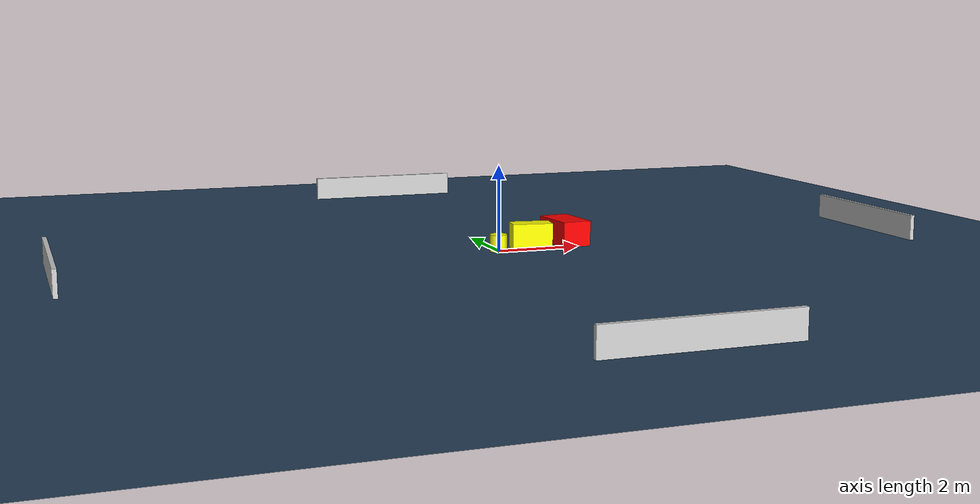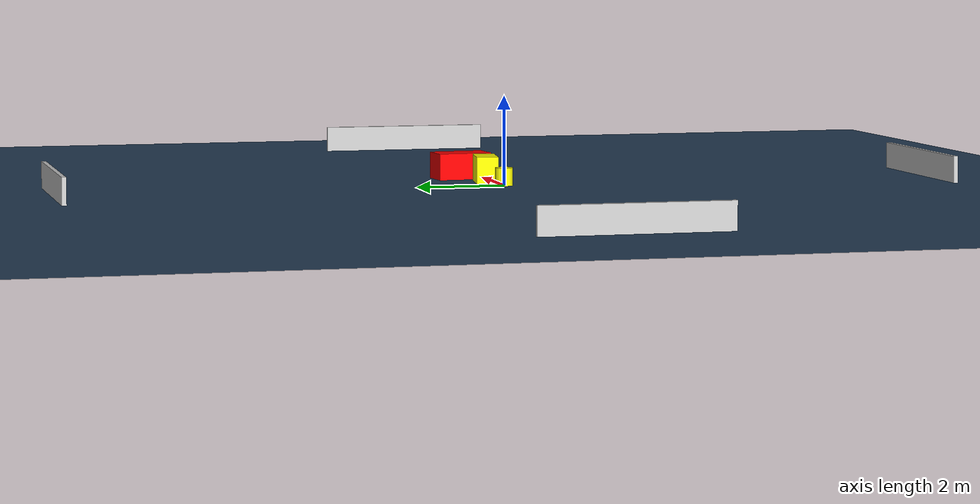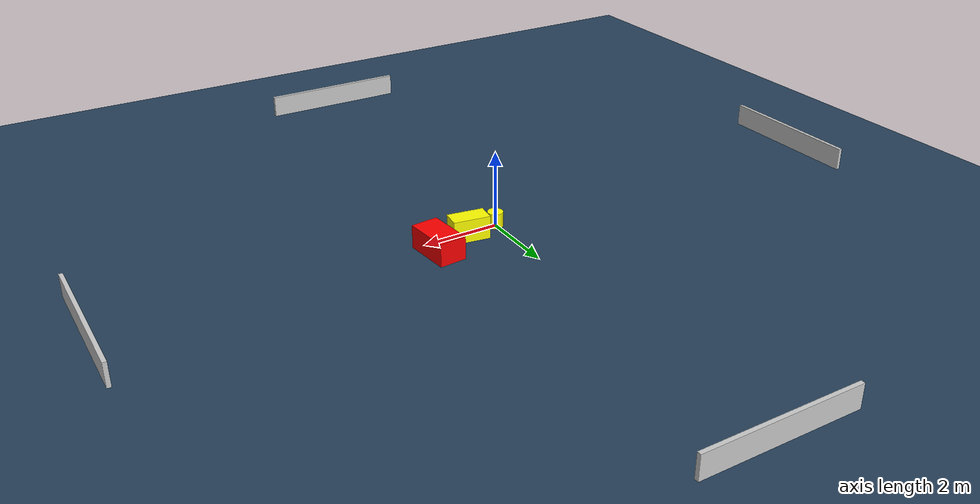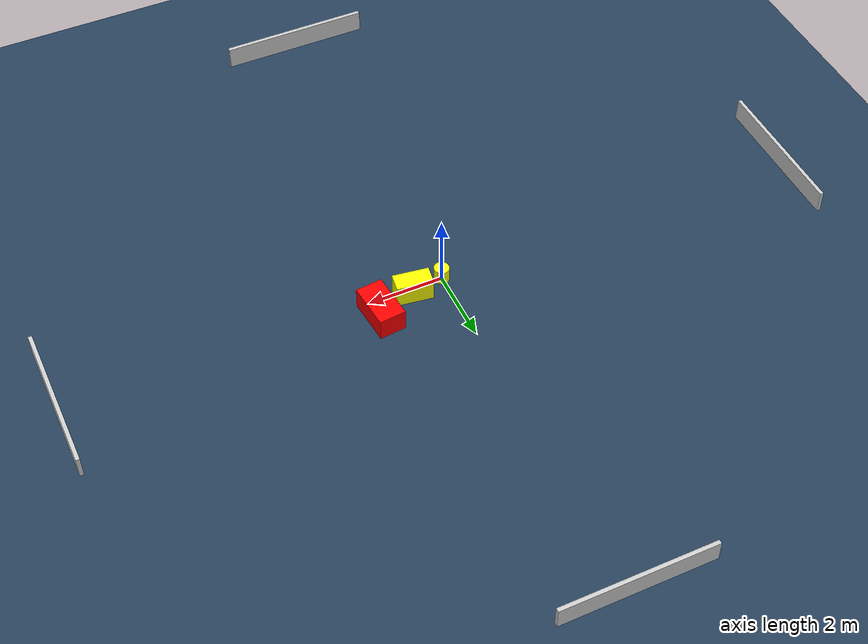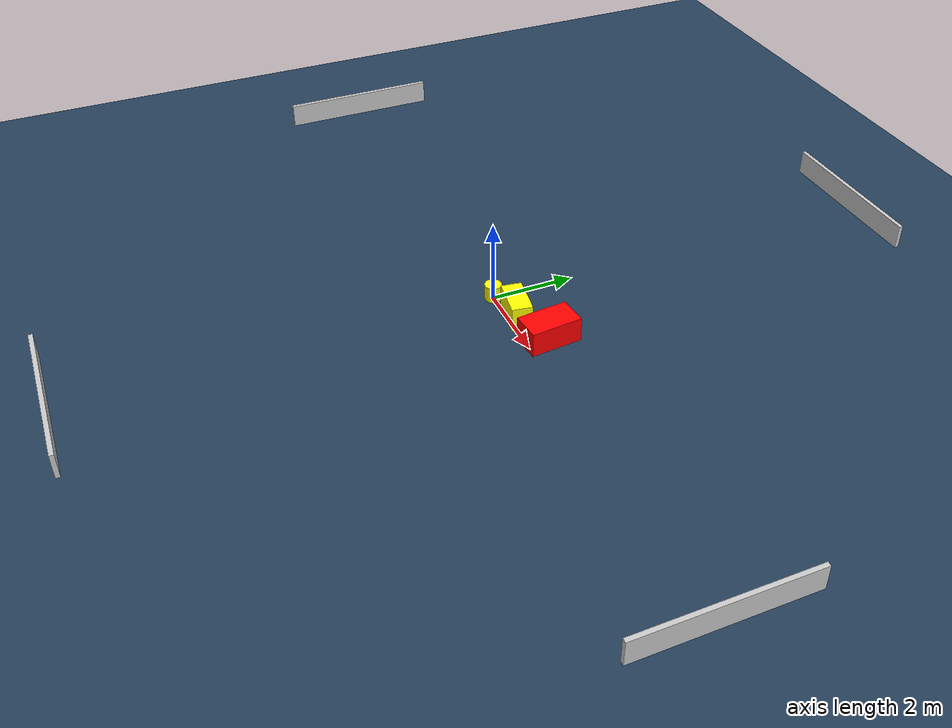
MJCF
<?xml version="1.0" ?>
<mujoco model="generated_environment">
  <option timestep="0.01" integrator="RK4" cone="elliptic"/>
  <default>
    <geom density="1"/>
  </default>
  <asset>
    <texture builtin="gradient" height="3072" name="skybox" rgb1="0.3 0.5 0.7" rgb2="0 0 0" type="skybox" width="512"/>
    <texture builtin="checker" height="300" name="groundplane" rgb1="0.2 0.3 0.4" rgb2="0.1 0.2 0.3" type="2d" width="300"/>
    <material name="groundplane" reflectance="0.2" texrepeat="5 5" texture="groundplane"/>
  </asset>
  <worldbody>
    <light dir="0 0 -1" directional="true" pos="0 0 1.5"/>
    <geom condim="3" friction="0.5 0.005 0.001" material="groundplane" name="floor" pos="0 0 0" size="0 0 0.05" type="plane"/>
    <body name="walls">
      <geom name="wall_1" condim="4" pos="-10.0 0.0 0.3" rgba="0.800000011920929 0.800000011920929 0.800000011920929 1.0" size="0.05 2.0 0.3" type="box"/>
      <geom name="wall_2" condim="4" pos="10.0 0.0 0.3" rgba="0.800000011920929 0.800000011920929 0.800000011920929 1.0" size="0.05 2.0 0.3" type="box"/>
      <geom name="wall_3" condim="4" pos="0.0 -10.0 0.3" rgba="0.800000011920929 0.800000011920929 0.800000011920929 1.0" size="2.0 0.05 0.3" type="box"/>
      <geom name="wall_4" condim="4" pos="0.0 10.0 0.3" rgba="0.800000011920929 0.800000011920929 0.800000011920929 1.0" size="2.0 0.05 0.3" type="box"/>
    </body>
    <body name="robot">
      <joint name="joint_x" type="slide" pos="0 0 0" axis="1 0 0"/>
      <joint name="joint_y" type="slide" pos="0 0 0" axis="0 1 0"/>
      <geom name="robot" type="cylinder" pos="0.0 0.0 0.2" size="0.2 0.2 0.0" mass="5.0" friction="1.0 0.005 0.0001" condim="4" rgba="1.0 1.0 0.0 1.0"/>
    </body>
    <body name="obstacle_1_movable">
      <geom name="obstacle_1_movable" condim="4" pos="0.880952168003416 0.19597666146977852 0.3" euler="0 0 261.70731230226806" friction="0.0 0.005 0.001" rgba="1.0 1.0 0.0 1.0" size="0.2445239234554481 0.47541789098810017 0.3" type="box" mass="0.1"/>
      <joint type="free"/>
    </body>
    <body name="obstacle_2_static">
      <geom name="obstacle_2_static" condim="4" pos="1.895999510857527 0.5276469630704161 0.3" euler="0 0 95.5349342839564" friction="0.0 0.005 0.001" rgba="1.0 0.0 0.0 1.0" size="0.6145892203899768 0.3522456391569583 0.3" type="box"/>
    </body>
  </worldbody>
  <actuator>
    <motor name="actuator_x" joint="joint_x" gear="1" ctrlrange="-1 1"/>
    <motor name="actuator_y" joint="joint_y" gear="1" ctrlrange="-1 1"/>
  </actuator>
</mujoco>
